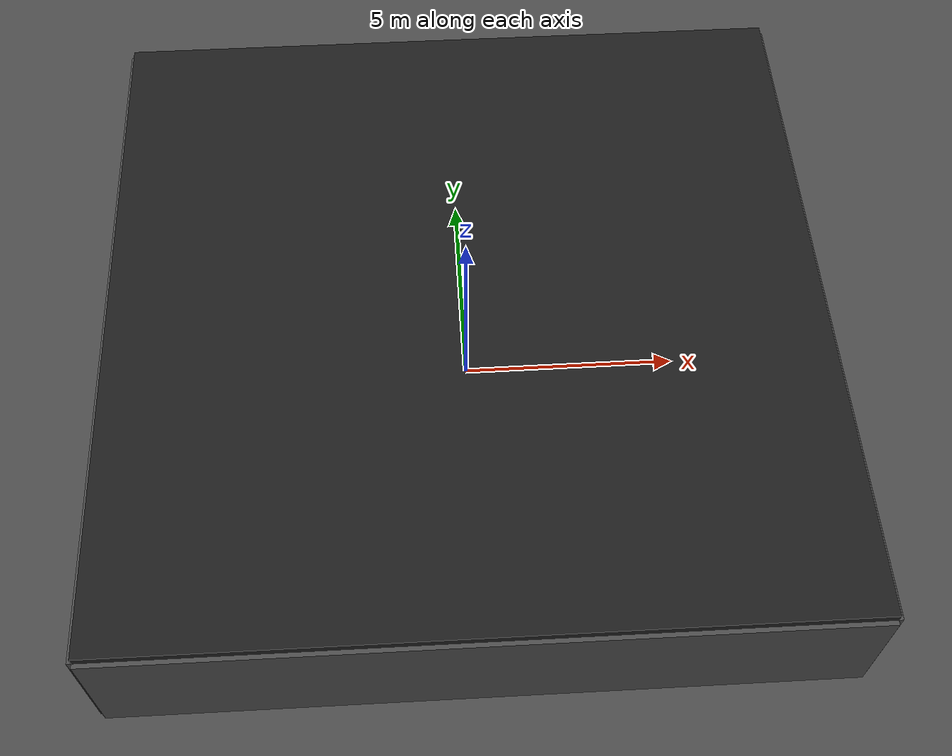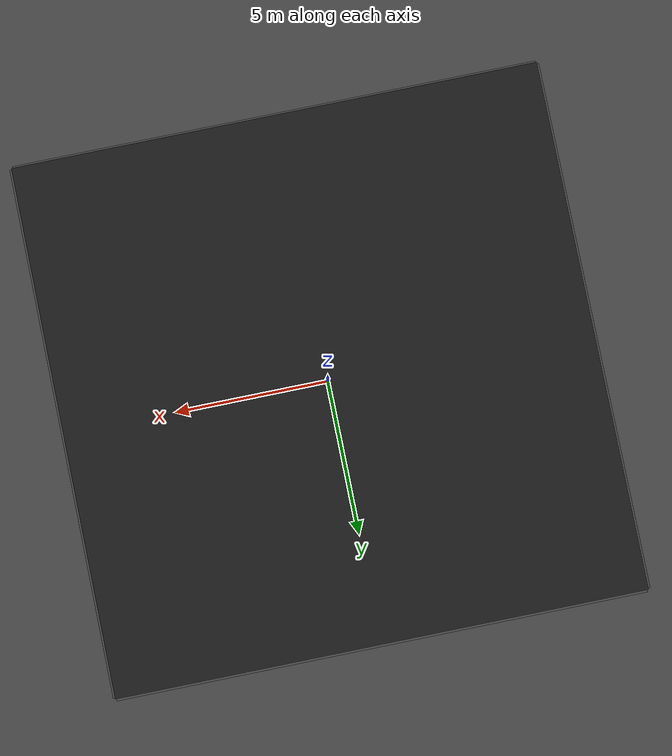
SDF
<?xml version="1.0" ?>
<sdf version="1.6">
  <world name="dark_disaster_house">

    <!-- Physics -->
    <physics name='default_physics' default='0' type='ode'>
      <gravity>0 0 -9.8066</gravity>
      <ode>
        <solver>
          <type>quick</type>
          <iters>10</iters>
          <sor>1.3</sor>
          <use_dynamic_moi_rescaling>0</use_dynamic_moi_rescaling>
        </solver>
        <constraints>
          <cfm>0</cfm>
          <erp>0.2</erp>
          <contact_max_correcting_vel>100</contact_max_correcting_vel>
          <contact_surface_layer>0.001</contact_surface_layer>
        </constraints>
      </ode>
      <max_step_size>0.004</max_step_size>
      <real_time_factor>1</real_time_factor>
      <real_time_update_rate>250</real_time_update_rate>
    </physics>

    <!-- Scene (very dark ambient lighting) -->
    <scene>
      <ambient>0.02 0.02 0.02 1</ambient>
      <background>0.05 0.05 0.05 1</background>
      <shadows>1</shadows>
      <fog>
        <color>0.1 0.1 0.1 1</color>
        <type>linear</type>
        <start>10</start>
        <end>30</end>
        <density>0.3</density>
      </fog>
    </scene>

    <!-- Ground plane -->
    <model name="ground_plane">
      <static>true</static>
      <link name="link">
        <collision name="collision">
          <geometry>
            <plane>
              <normal>0 0 1</normal>
              <size>50 50</size>
            </plane>
          </geometry>
          <surface>
            <contact>
              <collide_bitmask>65535</collide_bitmask>
              <ode/>
            </contact>
            <friction>
              <ode>
                <mu>100</mu>
                <mu2>50</mu2>
              </ode>
            </friction>
          </surface>
        </collision>
        <visual name="visual">
          <geometry>
            <plane>
              <normal>0 0 1</normal>
              <size>50 50</size>
            </plane>
          </geometry>
          <material>
            <script>
              <uri>file://media/materials/scripts/gazebo.material</uri>
              <name>Gazebo/DarkGrey</name>
            </script>
          </material>
        </visual>
      </link>
    </model>

    <!-- House structure -->
    <!-- Outer walls -->
    <model name="wall_north">
      <static>true</static>
      <pose>0 8 1.5 0 0 0</pose>
      <link name="link">
        <collision name="collision">
          <geometry>
            <box>
              <size>16 0.2 3</size>
            </box>
          </geometry>
        </collision>
        <visual name="visual">
          <geometry>
            <box>
              <size>16 0.2 3</size>
            </box>
          </geometry>
          <material>
            <script>
              <uri>file://media/materials/scripts/gazebo.material</uri>
              <name>Gazebo/DarkGrey</name>
            </script>
          </material>
        </visual>
      </link>
    </model>

    <model name="wall_south">
      <static>true</static>
      <pose>0 -8 1.5 0 0 0</pose>
      <link name="link">
        <collision name="collision">
          <geometry>
            <box>
              <size>16 0.2 3</size>
            </box>
          </geometry>
        </collision>
        <visual name="visual">
          <geometry>
            <box>
              <size>16 0.2 3</size>
            </box>
          </geometry>
          <material>
            <script>
              <uri>file://media/materials/scripts/gazebo.material</uri>
              <name>Gazebo/DarkGrey</name>
            </script>
          </material>
        </visual>
      </link>
    </model>

    <model name="wall_east">
      <static>true</static>
      <pose>8 0 1.5 0 0 1.5708</pose>
      <link name="link">
        <collision name="collision">
          <geometry>
            <box>
              <size>16 0.2 3</size>
            </box>
          </geometry>
        </collision>
        <visual name="visual">
          <geometry>
            <box>
              <size>16 0.2 3</size>
            </box>
          </geometry>
          <material>
            <script>
              <uri>file://media/materials/scripts/gazebo.material</uri>
              <name>Gazebo/DarkGrey</name>
            </script>
          </material>
        </visual>
      </link>
    </model>

    <model name="wall_west">
      <static>true</static>
      <pose>-8 0 1.5 0 0 1.5708</pose>
      <link name="link">
        <collision name="collision">
          <geometry>
            <box>
              <size>16 0.2 3</size>
            </box>
          </geometry>
        </collision>
        <visual name="visual">
          <geometry>
            <box>
              <size>16 0.2 3</size>
            </box>
          </geometry>
          <material>
            <script>
              <uri>file://media/materials/scripts/gazebo.material</uri>
              <name>Gazebo/DarkGrey</name>
            </script>
          </material>
        </visual>
      </link>
    </model>

    <!-- Roof -->
    <model name="roof">
      <static>true</static>
      <pose>0 0 3.1 0 0 0</pose>
      <link name="link">
        <collision name="collision">
          <geometry>
            <box>
              <size>16 16 0.2</size>
            </box>
          </geometry>
        </collision>
        <visual name="visual">
          <geometry>
            <box>
              <size>16 16 0.2</size>
            </box>
          </geometry>
          <material>
            <script>
              <uri>file://media/materials/scripts/gazebo.material</uri>
              <name>Gazebo/Black</name>
            </script>
          </material>
        </visual>
      </link>
    </model>

    <!-- Interior walls creating rooms -->
    <model name="interior_wall_1">
      <static>true</static>
      <pose>0 2 1.5 0 0 0</pose>
      <link name="link">
        <collision name="collision">
          <geometry>
            <box>
              <size>8 0.2 3</size>
            </box>
          </geometry>
        </collision>
        <visual name="visual">
          <geometry>
            <box>
              <size>8 0.2 3</size>
            </box>
          </geometry>
          <material>
            <script>
              <uri>file://media/materials/scripts/gazebo.material</uri>
              <name>Gazebo/Grey</name>
            </script>
          </material>
        </visual>
      </link>
    </model>

    <model name="interior_wall_2">
      <static>true</static>
      <pose>-2 0 1.5 0 0 1.5708</pose>
      <link name="link">
        <collision name="collision">
          <geometry>
            <box>
              <size>6 0.2 3</size>
            </box>
          </geometry>
        </collision>
        <visual name="visual">
          <geometry>
            <box>
              <size>6 0.2 3</size>
            </box>
          </geometry>
          <material>
            <script>
              <uri>file://media/materials/scripts/gazebo.material</uri>
              <name>Gazebo/Grey</name>
            </script>
          </material>
        </visual>
      </link>
    </model>

    <!-- Disaster debris -->
    <model name="debris_1">
      <static>true</static>
      <pose>3 -2 0.5 0 0.3 0.5</pose>
      <link name="link">
        <collision name="collision">
          <geometry>
            <box>
              <size>2 0.5 1</size>
            </box>
          </geometry>
        </collision>
        <visual name="visual">
          <geometry>
            <box>
              <size>2 0.5 1</size>
            </box>
          </geometry>
          <material>
            <script>
              <uri>file://media/materials/scripts/gazebo.material</uri>
              <name>Gazebo/Wood</name>
            </script>
          </material>
        </visual>
      </link>
    </model>

    <model name="debris_2">
      <static>true</static>
      <pose>-4 3 0.3 0 0.2 1.2</pose>
      <link name="link">
        <collision name="collision">
          <geometry>
            <box>
              <size>1.5 1 0.6</size>
            </box>
          </geometry>
        </collision>
        <visual name="visual">
          <geometry>
            <box>
              <size>1.5 1 0.6</size>
            </box>
          </geometry>
          <material>
            <script>
              <uri>file://media/materials/scripts/gazebo.material</uri>
              <name>Gazebo/WoodPallet</name>
            </script>
          </material>
        </visual>
      </link>
    </model>

    <model name="debris_3">
      <static>true</static>
      <pose>5 4 0.2 0 0 0.8</pose>
      <link name="link">
        <collision name="collision">
          <geometry>
            <cylinder>
              <radius>0.5</radius>
              <length>0.4</length>
            </cylinder>
          </geometry>
        </collision>
        <visual name="visual">
          <geometry>
            <cylinder>
              <radius>0.5</radius>
              <length>0.4</length>
            </cylinder>
          </geometry>
          <material>
            <script>
              <uri>file://media/materials/scripts/gazebo.material</uri>
              <name>Gazebo/Grey</name>
            </script>
          </material>
        </visual>
      </link>
    </model>

    <!-- Very dim emergency lighting -->
    <light name="emergency_light_1" type="point">
      <pose>-6 -6 2.5 0 0 0</pose>
      <diffuse>0.1 0.05 0.05 1</diffuse>
      <specular>0.05 0.02 0.02 1</specular>
      <attenuation>
        <range>5</range>
        <constant>0.5</constant>
        <linear>0.3</linear>
        <quadratic>0.1</quadratic>
      </attenuation>
      <cast_shadows>true</cast_shadows>
    </light>

    <light name="emergency_light_2" type="point">
      <pose>6 6 2.5 0 0 0</pose>
      <diffuse>0.08 0.08 0.15 1</diffuse>
      <specular>0.04 0.04 0.08 1</specular>
      <attenuation>
        <range>4</range>
        <constant>0.6</constant>
        <linear>0.4</linear>
        <quadratic>0.2</quadratic>
      </attenuation>
      <cast_shadows>true</cast_shadows>
    </light>

    <!-- Flickering light (simulated emergency) -->
    <light name="flickering_light" type="point">
      <pose>0 -4 2 0 0 0</pose>
      <diffuse>0.05 0.05 0.1 1</diffuse>
      <specular>0.02 0.02 0.05 1</specular>
      <attenuation>
        <range>3</range>
        <constant>0.8</constant>
        <linear>0.5</linear>
        <quadratic>0.3</quadratic>
      </attenuation>
      <cast_shadows>true</cast_shadows>
    </light>

    <!-- Some furniture/obstacles -->
    <model name="table_1">
      <static>true</static>
      <pose>-1 -3 0.4 0 0 0</pose>
      <link name="link">
        <collision name="collision">
          <geometry>
            <box>
              <size>1.5 0.8 0.8</size>
            </box>
          </geometry>
        </collision>
        <visual name="visual">
          <geometry>
            <box>
              <size>1.5 0.8 0.8</size>
            </box>
          </geometry>
          <material>
            <script>
              <uri>file://media/materials/scripts/gazebo.material</uri>
              <name>Gazebo/Wood</name>
            </script>
          </material>
        </visual>
      </link>
    </model>

    <model name="chair_1">
      <static>true</static>
      <pose>2 5 0.4 0 0 1.5708</pose>
      <link name="link">
        <collision name="collision">
          <geometry>
            <box>
              <size>0.5 0.5 0.8</size>
            </box>
          </geometry>
        </collision>
        <visual name="visual">
          <geometry>
            <box>
              <size>0.5 0.5 0.8</size>
            </box>
          </geometry>
          <material>
            <script>
              <uri>file://media/materials/scripts/gazebo.material</uri>
              <name>Gazebo/DarkGrey</name>
            </script>
          </material>
        </visual>
      </link>
    </model>

    <!-- Plugin for GUI -->
    <gui fullscreen='0'>
      <camera name='user_camera'>
        <pose frame=''>5 -5 2 0 0.275643 2.35619</pose>
        <view_controller>orbit</view_controller>
      </camera>
    </gui>

  </world>
</sdf>
